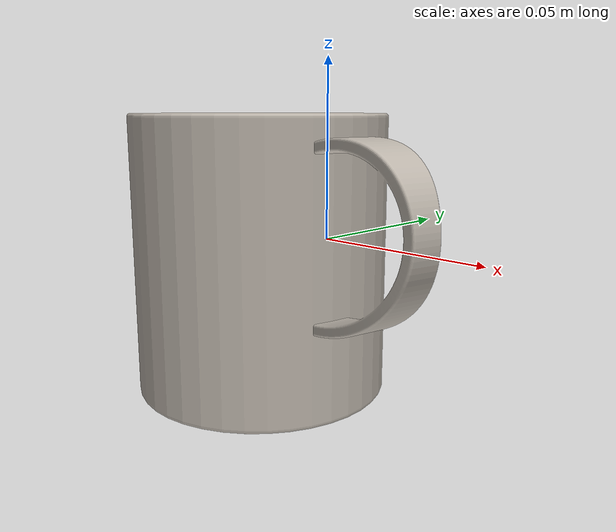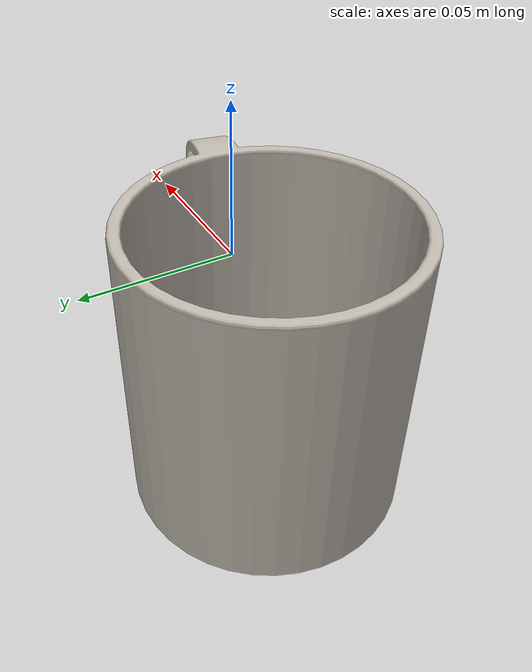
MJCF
<mujoco model="cup3">
  <default>
    <default class="visual">
      <geom group="2" type="mesh" contype="0" conaffinity="0"/>
    </default>
    <default class="collision">
      <geom group="3" type="mesh"/>
    </default>
  </default>
  <asset>
    <texture type="2d" name="A11_Cer-Stripe_CY_S_1_BaseColor" file="A11_Cer-Stripe_CY_S_1_BaseColor.png"/>
    <material name="01_-_Default" texture="A11_Cer-Stripe_CY_S_1_BaseColor" specular="1.0" shininess="0.199999995"/>
    <mesh file="cup3.obj"/>
  </asset>
  <worldbody>
    <body name="cup3">
      <geom material="01_-_Default" mesh="cup3" class="visual"/>
      <geom mesh="cup3" class="collision"/>
    </body>
  </worldbody>
</mujoco>
